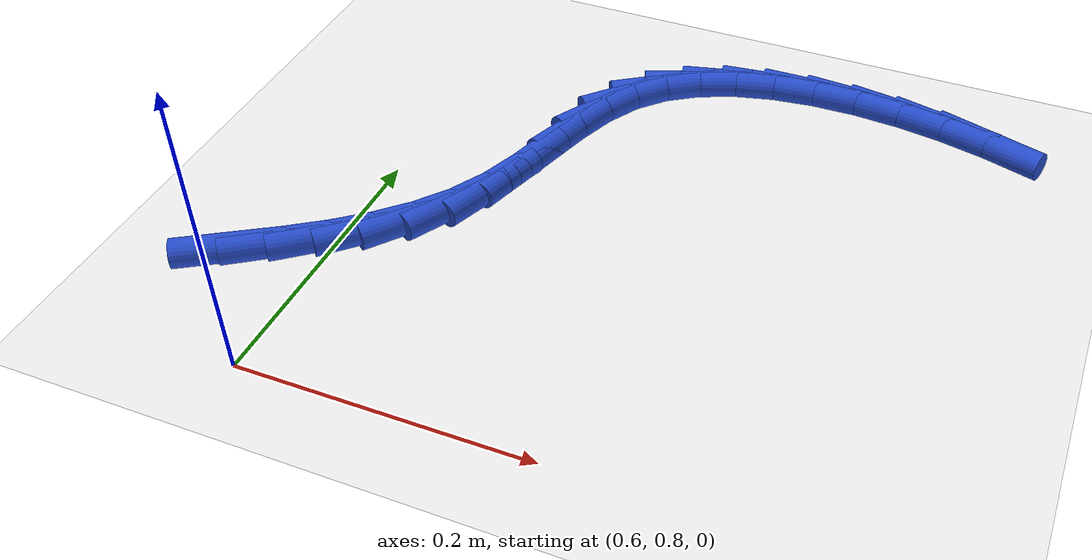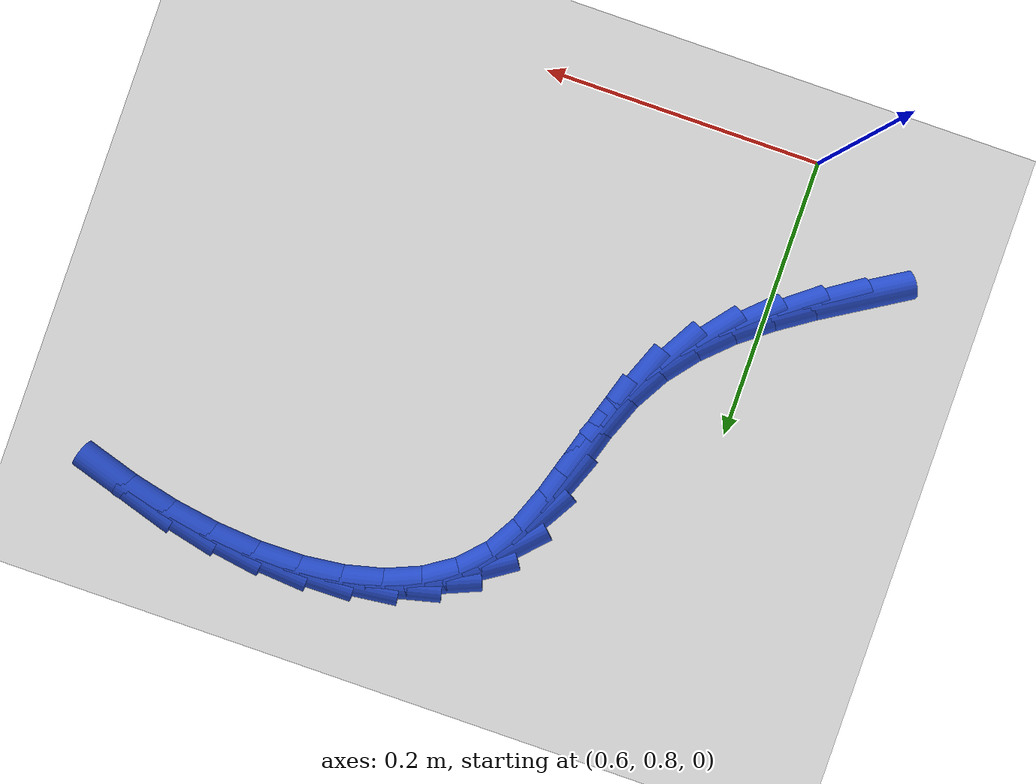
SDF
<sdf version="1.6">
 <world name="default">
  <model name="ground_plane">
   <static>1</static>
   <link name="link">
    <collision name="collision">
     <geometry><plane><normal>0 0 1</normal><size>100 100</size></plane></geometry>
     <surface><friction><ode><mu>100</mu><mu2>50</mu2></ode></friction></surface>
    </collision>
    <visual name="visual">
     <cast_shadows>0</cast_shadows>
     <geometry><plane><normal>0 0 1</normal><size>100 100</size></plane></geometry>
     <material>
      <script><uri>file://media/materials/scripts/gazebo.material</uri><name>Gazebo/WhiteGlow</name></script>
     </material>
    </visual>
   </link>
  </model>
  <model name="line">
   <link name="link_38">
    <pose>0.5473155327089098 0.8808154334766313 0.01 0 1.57 0.5469333132520303</pose>
    <collision name="collision">
     <geometry><cylinder><radius>0.01</radius><length>0.08</length></cylinder></geometry>
    </collision>
    <visual name="visual">
     <material>
      <script><name>Gazebo/Blue</name><uri>file://media/materials/scripts/gazebo.material</uri></script>
     </material>
     <geometry><cylinder><radius>0.01</radius><length>0.08</length></cylinder></geometry>
    </visual>
   </link>
   <link name="link_39">
    <pose>0.573169972003266 0.8965580379163665 0.01 0 1.57 0.5920293379302604</pose>
    <collision name="collision">
     <geometry><cylinder><radius>0.01</radius><length>0.08</length></cylinder></geometry>
    </collision>
    <visual name="visual">
     <material>
      <script><name>Gazebo/Blue</name><uri>file://media/materials/scripts/gazebo.material</uri></script>
     </material>
     <geometry><cylinder><radius>0.01</radius><length>0.08</length></cylinder></geometry>
    </visual>
   </link>
   <link name="link_40">
    <pose>0.5979247990098461 0.9132056280966228 0.01 0 1.57 0.6628574029519354</pose>
    <collision name="collision">
     <geometry><cylinder><radius>0.01</radius><length>0.08</length></cylinder></geometry>
    </collision>
    <visual name="visual">
     <material>
      <script><name>Gazebo/Blue</name><uri>file://media/materials/scripts/gazebo.material</uri></script>
     </material>
     <geometry><cylinder><radius>0.01</radius><length>0.08</length></cylinder></geometry>
    </visual>
   </link>
   <link name="link_41">
    <pose>0.6209625681737522 0.9311910677137014 0.01 0 1.57 0.7619934752384302</pose>
    <collision name="collision">
     <geometry><cylinder><radius>0.01</radius><length>0.08</length></cylinder></geometry>
    </collision>
    <visual name="visual">
     <material>
      <script><name>Gazebo/Blue</name><uri>file://media/materials/scripts/gazebo.material</uri></script>
     </material>
     <geometry><cylinder><radius>0.01</radius><length>0.08</length></cylinder></geometry>
    </visual>
   </link>
   <link name="link_42">
    <pose>0.6416658339400866 0.9509472204639033 0.01 0 1.57 0.8909799531553018</pose>
    <collision name="collision">
     <geometry><cylinder><radius>0.01</radius><length>0.08</length></cylinder></geometry>
    </collision>
    <visual name="visual">
     <material>
      <script><name>Gazebo/Blue</name><uri>file://media/materials/scripts/gazebo.material</uri></script>
     </material>
     <geometry><cylinder><radius>0.01</radius><length>0.08</length></cylinder></geometry>
    </visual>
   </link>
   <link name="link_43">
    <pose>0.6594171507539515 0.9729069500435298 0.01 0 1.57 1.0475604432657277</pose>
    <collision name="collision">
     <geometry><cylinder><radius>0.01</radius><length>0.08</length></cylinder></geometry>
    </collision>
    <visual name="visual">
     <material>
      <script><name>Gazebo/Blue</name><uri>file://media/materials/scripts/gazebo.material</uri></script>
     </material>
     <geometry><cylinder><radius>0.01</radius><length>0.08</length></cylinder></geometry>
    </visual>
   </link>
   <link name="link_44">
    <pose>0.6736037022128786 0.9974993836551991 0.01 0 1.57 1.194021732020882</pose>
    <collision name="collision">
     <geometry><cylinder><radius>0.01</radius><length>0.08</length></cylinder></geometry>
    </collision>
    <visual name="visual">
     <material>
      <script><name>Gazebo/Blue</name><uri>file://media/materials/scripts/gazebo.material</uri></script>
     </material>
     <geometry><cylinder><radius>0.01</radius><length>0.08</length></cylinder></geometry>
    </visual>
   </link>
   <link name="link_45">
    <pose>0.6843199770834671 1.0245827359347883 0.01 0 1.57 1.2688042066182017</pose>
    <collision name="collision">
     <geometry><cylinder><radius>0.01</radius><length>0.08</length></cylinder></geometry>
    </collision>
    <visual name="visual">
     <material>
      <script><name>Gazebo/Blue</name><uri>file://media/materials/scripts/gazebo.material</uri></script>
     </material>
     <geometry><cylinder><radius>0.01</radius><length>0.08</length></cylinder></geometry>
    </visual>
   </link>
   <link name="link_46">
    <pose>0.6931214358187368 1.052835975088329 0.01 0 1.57 1.2716145312156795</pose>
    <collision name="collision">
     <geometry><cylinder><radius>0.01</radius><length>0.08</length></cylinder></geometry>
    </collision>
    <visual name="visual">
     <material>
      <script><name>Gazebo/Blue</name><uri>file://media/materials/scripts/gazebo.material</uri></script>
     </material>
     <geometry><cylinder><radius>0.01</radius><length>0.08</length></cylinder></geometry>
    </visual>
   </link>
   <link name="link_47">
    <pose>0.701744253942763 1.080792202290792 0.01 0 1.57 1.2000890362745547</pose>
    <collision name="collision">
     <geometry><cylinder><radius>0.01</radius><length>0.08</length></cylinder></geometry>
    </collision>
    <visual name="visual">
     <material>
      <script><name>Gazebo/Blue</name><uri>file://media/materials/scripts/gazebo.material</uri></script>
     </material>
     <geometry><cylinder><radius>0.01</radius><length>0.08</length></cylinder></geometry>
    </visual>
   </link>
   <link name="link_48">
    <pose>0.7119246069796211 1.1069845187171479 0.01 0 1.57 1.040197676958847</pose>
    <collision name="collision">
     <geometry><cylinder><radius>0.01</radius><length>0.08</length></cylinder></geometry>
    </collision>
    <visual name="visual">
     <material>
      <script><name>Gazebo/Blue</name><uri>file://media/materials/scripts/gazebo.material</uri></script>
     </material>
     <geometry><cylinder><radius>0.01</radius><length>0.08</length></cylinder></geometry>
    </visual>
   </link>
   <link name="link_49">
    <pose>0.7253972303397928 1.1299470729590937 0.01 0 1.57 0.8073341549045417</pose>
    <collision name="collision">
     <geometry><cylinder><radius>0.01</radius><length>0.08</length></cylinder></geometry>
    </collision>
    <visual name="visual">
     <material>
      <script><name>Gazebo/Blue</name><uri>file://media/materials/scripts/gazebo.material</uri></script>
     </material>
     <geometry><cylinder><radius>0.01</radius><length>0.08</length></cylinder></geometry>
    </visual>
   </link>
   <link name="link_50">
    <pose>0.7432972343025063 1.1486501301714647 0.01 0 1.57 0.5847191276660734</pose>
    <collision name="collision">
     <geometry><cylinder><radius>0.01</radius><length>0.08</length></cylinder></geometry>
    </collision>
    <visual name="visual">
     <material>
      <script><name>Gazebo/Blue</name><uri>file://media/materials/scripts/gazebo.material</uri></script>
     </material>
     <geometry><cylinder><radius>0.01</radius><length>0.08</length></cylinder></geometry>
    </visual>
   </link>
   <link name="link_51">
    <pose>0.7652360269123551 1.1631721675355524 0.01 0 1.57 0.3958051857030596</pose>
    <collision name="collision">
     <geometry><cylinder><radius>0.01</radius><length>0.08</length></cylinder></geometry>
    </collision>
    <visual name="visual">
     <material>
      <script><name>Gazebo/Blue</name><uri>file://media/materials/scripts/gazebo.material</uri></script>
     </material>
     <geometry><cylinder><radius>0.01</radius><length>0.08</length></cylinder></geometry>
    </visual>
   </link>
   <link name="link_52">
    <pose>0.7905865796690845 1.1737650807920883 0.01 0 1.57 0.2410229043029383</pose>
    <collision name="collision">
     <geometry><cylinder><radius>0.01</radius><length>0.08</length></cylinder></geometry>
    </collision>
    <visual name="visual">
     <material>
      <script><name>Gazebo/Blue</name><uri>file://media/materials/scripts/gazebo.material</uri></script>
     </material>
     <geometry><cylinder><radius>0.01</radius><length>0.08</length></cylinder></geometry>
    </visual>
   </link>
   <link name="link_53">
    <pose>0.8187218640724383 1.1806807656818028 0.01 0 1.57 0.11471396210622445</pose>
    <collision name="collision">
     <geometry><cylinder><radius>0.01</radius><length>0.08</length></cylinder></geometry>
    </collision>
    <visual name="visual">
     <material>
      <script><name>Gazebo/Blue</name><uri>file://media/materials/scripts/gazebo.material</uri></script>
     </material>
     <geometry><cylinder><radius>0.01</radius><length>0.08</length></cylinder></geometry>
    </visual>
   </link>
   <link name="link_54">
    <pose>0.849014851622162 1.1841711179454284 0.01 0 1.57 0.00995815317012087</pose>
    <collision name="collision">
     <geometry><cylinder><radius>0.01</radius><length>0.08</length></cylinder></geometry>
    </collision>
    <visual name="visual">
     <material>
      <script><name>Gazebo/Blue</name><uri>file://media/materials/scripts/gazebo.material</uri></script>
     </material>
     <geometry><cylinder><radius>0.01</radius><length>0.08</length></cylinder></geometry>
    </visual>
   </link>
   <link name="link_55">
    <pose>0.880838513818 1.1844880333236962 0.01 0 1.57 -0.07941830753010753</pose>
    <collision name="collision">
     <geometry><cylinder><radius>0.01</radius><length>0.08</length></cylinder></geometry>
    </collision>
    <visual name="visual">
     <material>
      <script><name>Gazebo/Blue</name><uri>file://media/materials/scripts/gazebo.material</uri></script>
     </material>
     <geometry><cylinder><radius>0.01</radius><length>0.08</length></cylinder></geometry>
    </visual>
   </link>
   <link name="link_56">
    <pose>0.9135658221596977 1.1818834075573386 0.01 0 1.57 -0.15846745128347794</pose>
    <collision name="collision">
     <geometry><cylinder><radius>0.01</radius><length>0.08</length></cylinder></geometry>
    </collision>
    <visual name="visual">
     <material>
      <script><name>Gazebo/Blue</name><uri>file://media/materials/scripts/gazebo.material</uri></script>
     </material>
     <geometry><cylinder><radius>0.01</radius><length>0.08</length></cylinder></geometry>
    </visual>
   </link>
   <link name="link_57">
    <pose>0.9465697481469995 1.1766091363870856 0.01 0 1.57 -0.23134719445083093</pose>
    <collision name="collision">
     <geometry><cylinder><radius>0.01</radius><length>0.08</length></cylinder></geometry>
    </collision>
    <visual name="visual">
     <material>
      <script><name>Gazebo/Blue</name><uri>file://media/materials/scripts/gazebo.material</uri></script>
     </material>
     <geometry><cylinder><radius>0.01</radius><length>0.08</length></cylinder></geometry>
    </visual>
   </link>
   <link name="link_58">
    <pose>0.9792232632796497 1.1689171155536697 0.01 0 1.57 -0.30170814702455545</pose>
    <collision name="collision">
     <geometry><cylinder><radius>0.01</radius><length>0.08</length></cylinder></geometry>
    </collision>
    <visual name="visual">
     <material>
      <script><name>Gazebo/Blue</name><uri>file://media/materials/scripts/gazebo.material</uri></script>
     </material>
     <geometry><cylinder><radius>0.01</radius><length>0.08</length></cylinder></geometry>
    </visual>
   </link>
  </model>
 </world>
</sdf>
